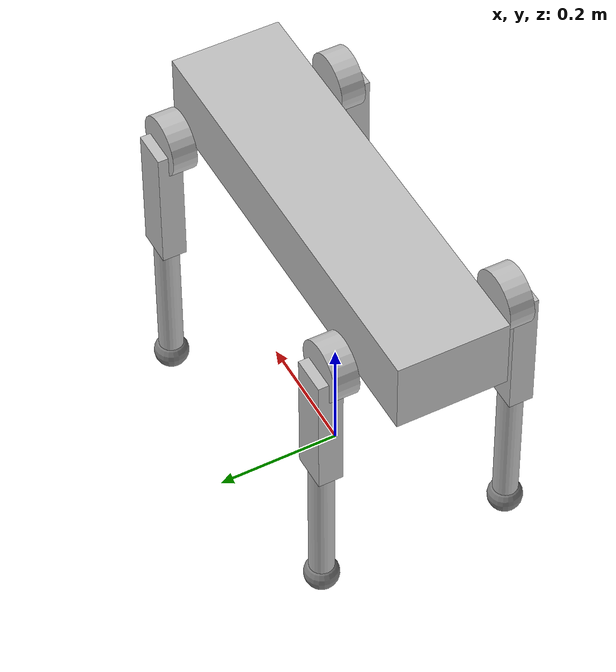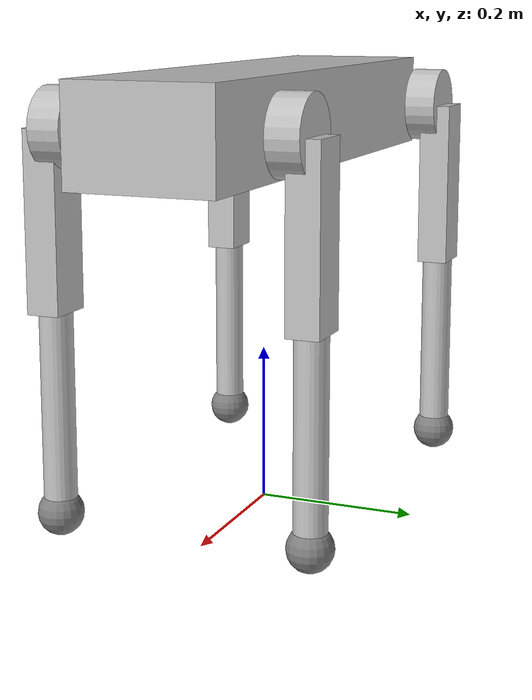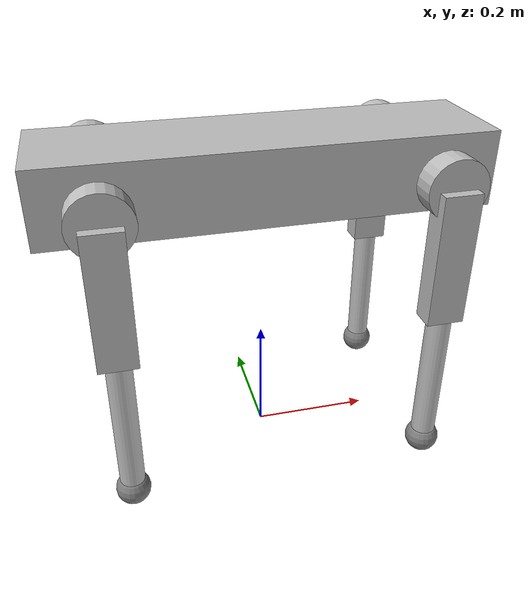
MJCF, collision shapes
<mujoco model="dobot_quad">
  <compiler angle="radian" meshdir="assets" autolimits="true"/>

  <default>
    <!-- Passive joint damping from the Dobot MuJoCo deployment model. -->
    <!-- Armature and frictionloss are configured with the MJLab actuators. -->
    <joint damping="0.02"/>
  </default>

  <asset>
    <mesh name="trunk" file="trunk.STL"/>
    <mesh name="hip" file="hip.STL"/>
    <mesh name="thigh_l" file="thigh_l.STL"/>
    <mesh name="calf" file="calf.STL"/>
    <mesh name="thigh_r" file="thigh_r.STL" scale="1 -1 1"/>
  </asset>
  <worldbody>
    <body name="link_trunk" pos="0 0 0.5">
      <inertial pos="0.002737 0.000769 -0.003468" quat="0.000852699 0.707377 0.000728153 0.706836" mass="8.32" diaginertia="0.233841 0.217566 0.0370359"/>
      <joint name="joint_fixed_world" type="free"/>
      <geom type="mesh" contype="0" conaffinity="0" group="1" density="0" rgba="0.752941 0.752941 0.752941 1" mesh="trunk"/>
      <geom name="trunk_collision" size="0.35 0.09 0.06" type="box" rgba="0.752941 0.752941 0.752941 1"/>
      <site name="imu" pos="0 0 0"/>
      <body name="link_front_left_hip" pos="0.2525 0.062 0">
        <inertial pos="-0.02446 -0.01759 0" quat="0.573505 0.573533 0.413605 0.413622" mass="0.08629" diaginertia="8.58952e-05 7.58954e-05 2.65865e-05"/>
        <joint name="joint_front_left_abad" pos="0 0 0" axis="1 0 0" range="-0.6632 0.6632"/>
        <geom type="mesh" contype="0" conaffinity="0" group="1" density="0" rgba="0.752941 0.752941 0.752941 1" mesh="hip"/>
        <geom name="FL_hip_collision" size="0.048 0.02" pos="0 0.08 0" quat="0.707105 0.707108 0 0" type="cylinder" rgba="0.752941 0.752941 0.752941 1"/>
        <body name="link_front_left_thigh" pos="0 0.097 0">
          <inertial pos="0.00144 -0.04127 -0.0294" quat="0.984046 0.177294 -0.0141639 -0.0044598" mass="1.71551" diaginertia="0.010744 0.00934227 0.00281785"/>
          <joint name="joint_front_left_thigh_pitch" pos="0 0 0" axis="0 1 0" range="-2.618 2.618"/>
          <geom type="mesh" contype="0" conaffinity="0" group="1" density="0" rgba="0.752941 0.752941 0.752941 1" mesh="thigh_l"/>
          <geom name="FL_thigh_collision" size="0.1075 0.02 0.03" pos="0 0 -0.1075" quat="0.707105 0 0.707108 0" type="box" rgba="0.752941 0.752941 0.752941 1"/>
          <body name="link_front_left_calf" pos="0 0 -0.215">
            <inertial pos="-6.18033e-05 -8.38759e-05 -0.119636" quat="0.712462 -0.000119943 0.000176547 0.701711" mass="0.427" diaginertia="0.00441583 0.00439322 0.000103214"/>
            <joint name="joint_front_left_calf_pitch" pos="0 0 0" axis="0 1 0" range="-2.53 2.53"/>
            <geom type="mesh" contype="0" conaffinity="0" group="1" density="0" rgba="0.752941 0.752941 0.752941 1" mesh="calf"/>
            <geom name="FL_calf_collision" size="0.02 0.125" pos="0 0 -0.12" type="cylinder" rgba="0.752941 0.752941 0.752941 1"/>
            <geom name="FL_foot_collision" size="0.028" pos="0 0 -0.245"/>
            <site name="FL" pos="0 0 -0.245"/>
          </body>
        </body>
      </body>
      <body name="link_front_right_hip" pos="0.2525 -0.062 0">
        <inertial pos="-0.02446 0.01759 0" quat="0.413622 0.413605 0.573533 0.573505" mass="0.08629" diaginertia="8.58952e-05 7.58954e-05 2.65865e-05"/>
        <joint name="joint_front_right_abad" pos="0 0 0" axis="1 0 0" range="-0.6632 0.6632"/>
        <geom quat="0 1 0 0" type="mesh" contype="0" conaffinity="0" group="1" density="0" rgba="0.752941 0.752941 0.752941 1" mesh="hip"/>
        <geom name="FR_hip_collision" size="0.048 0.02" pos="0 -0.08 0" quat="0.707105 0.707108 0 0" type="cylinder" rgba="0.752941 0.752941 0.752941 1"/>
        <body name="link_front_right_thigh" pos="0 -0.097 0">
          <inertial pos="0.00144 0.04127 -0.0294" quat="0.984046 -0.177294 -0.0141639 0.0044598" mass="1.71551" diaginertia="0.010744 0.00934227 0.00281785"/>
          <joint name="joint_front_right_thigh_pitch" pos="0 0 0" axis="0 1 0" range="-2.618 2.618"/>
          <geom type="mesh" contype="0" conaffinity="0" group="1" density="0" rgba="0.752941 0.752941 0.752941 1" mesh="thigh_r"/>
          <geom name="FR_thigh_collision" size="0.1075 0.02 0.03" pos="0 0 -0.1075" quat="0.707105 0 0.707108 0" type="box" rgba="0.752941 0.752941 0.752941 1"/>
          <body name="link_front_right_calf" pos="0 0 -0.215">
            <inertial pos="-6.18033e-05 -8.38759e-05 -0.119636" quat="0.712462 -0.000119943 0.000176547 0.701711" mass="0.427" diaginertia="0.00441583 0.00439322 0.000103214"/>
            <joint name="joint_front_right_calf_pitch" pos="0 0 0" axis="0 1 0" range="-2.53 2.53"/>
            <geom type="mesh" contype="0" conaffinity="0" group="1" density="0" rgba="0.752941 0.752941 0.752941 1" mesh="calf"/>
            <geom name="FR_calf_collision" size="0.02 0.125" pos="0 0 -0.12" type="cylinder" rgba="0.752941 0.752941 0.752941 1"/>
            <geom name="FR_foot_collision" size="0.028" pos="0 0 -0.245"/>
            <site name="FR" pos="0 0 -0.245"/>
          </body>
        </body>
      </body>
      <body name="link_rear_left_hip" pos="-0.2525 0.062 0">
        <inertial pos="0.02446 -0.01759 0" quat="0.413605 0.413622 0.573505 0.573533" mass="0.08629" diaginertia="8.58952e-05 7.58954e-05 2.65865e-05"/>
        <joint name="joint_rear_left_abad" pos="0 0 0" axis="1 0 0" range="-0.6632 0.6632"/>
        <geom quat="0 0 1 0" type="mesh" contype="0" conaffinity="0" group="1" density="0" rgba="0.752941 0.752941 0.752941 1" mesh="hip"/>
        <geom name="RL_hip_collision" size="0.048 0.02" pos="0 0.08 0" quat="0.707105 0.707108 0 0" type="cylinder" rgba="0.752941 0.752941 0.752941 1"/>
        <body name="link_rear_left_thigh" pos="0 0.097 0">
          <inertial pos="0.00144 -0.04127 -0.0294" quat="0.984046 0.177294 -0.0141639 -0.0044598" mass="1.71551" diaginertia="0.010744 0.00934227 0.00281785"/>
          <joint name="joint_rear_left_thigh_pitch" pos="0 0 0" axis="0 1 0" range="-2.618 2.618"/>
          <geom type="mesh" contype="0" conaffinity="0" group="1" density="0" rgba="0.752941 0.752941 0.752941 1" mesh="thigh_l"/>
          <geom name="RL_thigh_collision" size="0.1075 0.02 0.03" pos="0 0 -0.1075" quat="0.707105 0 0.707108 0" type="box" rgba="0.752941 0.752941 0.752941 1"/>
          <body name="link_rear_left_calf" pos="0 0 -0.215">
            <inertial pos="-6.18033e-05 -8.38759e-05 -0.119636" quat="0.712462 -0.000119943 0.000176547 0.701711" mass="0.427" diaginertia="0.00441583 0.00439322 0.000103214"/>
            <joint name="joint_rear_left_calf_pitch" pos="0 0 0" axis="0 1 0" range="-2.53 2.53"/>
            <geom type="mesh" contype="0" conaffinity="0" group="1" density="0" rgba="0.752941 0.752941 0.752941 1" mesh="calf"/>
            <geom name="RL_calf_collision" size="0.02 0.125" pos="0 0 -0.12" type="cylinder" rgba="0.752941 0.752941 0.752941 1"/>
            <geom name="RL_foot_collision" size="0.028" pos="0 0 -0.245"/>
            <site name="RL" pos="0 0 -0.245"/>
          </body>
        </body>
      </body>
      <body name="link_rear_right_hip" pos="-0.2525 -0.062 0">
        <inertial pos="0.02446 0.01759 0" quat="0.573533 0.573505 0.413622 0.413605" mass="0.08629" diaginertia="8.58952e-05 7.58954e-05 2.65865e-05"/>
        <joint name="joint_rear_right_abad" pos="0 0 0" axis="1 0 0" range="-0.6632 0.6632"/>
        <geom quat="0 0 0 -1" type="mesh" contype="0" conaffinity="0" group="1" density="0" rgba="0.752941 0.752941 0.752941 1" mesh="hip"/>
        <geom name="RR_hip_collision" size="0.048 0.02" pos="0 -0.08 0" quat="0.707105 0.707108 0 0" type="cylinder" rgba="0.752941 0.752941 0.752941 1"/>
        <body name="link_rear_right_thigh" pos="0 -0.097 0">
          <inertial pos="0.00144 0.04127 -0.0294" quat="0.984046 -0.177294 -0.0141639 0.0044598" mass="1.71551" diaginertia="0.010744 0.00934227 0.00281785"/>
          <joint name="joint_rear_right_thigh_pitch" pos="0 0 0" axis="0 1 0" range="-2.618 2.618"/>
          <geom type="mesh" contype="0" conaffinity="0" group="1" density="0" rgba="0.752941 0.752941 0.752941 1" mesh="thigh_r"/>
          <geom name="RR_thigh_collision" size="0.1075 0.02 0.03" pos="0 0 -0.1075" quat="0.707105 0 0.707108 0" type="box" rgba="0.752941 0.752941 0.752941 1"/>
          <body name="link_rear_right_calf" pos="0 0 -0.215">
            <inertial pos="-6.18033e-05 -8.38759e-05 -0.119636" quat="0.712462 -0.000119943 0.000176547 0.701711" mass="0.427" diaginertia="0.00441583 0.00439322 0.000103214"/>
            <joint name="joint_rear_right_calf_pitch" pos="0 0 0" axis="0 1 0" range="-2.53 2.53"/>
            <geom type="mesh" contype="0" conaffinity="0" group="1" density="0" rgba="0.752941 0.752941 0.752941 1" mesh="calf"/>
            <geom name="RR_calf_collision" size="0.02 0.125" pos="0 0 -0.12" type="cylinder" rgba="0.752941 0.752941 0.752941 1"/>
            <geom name="RR_foot_collision" size="0.028" pos="0 0 -0.245"/>
            <site name="RR" pos="0 0 -0.245"/>
          </body>
        </body>
      </body>
    </body>
  </worldbody>
  <sensor>
    <gyro name="imu_ang_vel" site="imu"/>
    <velocimeter name="imu_lin_vel" site="imu"/>
    <accelerometer name="imu_lin_acc" site="imu"/>
    <subtreeangmom name="root_angmom" body="link_trunk"/>
  </sensor>
</mujoco>
